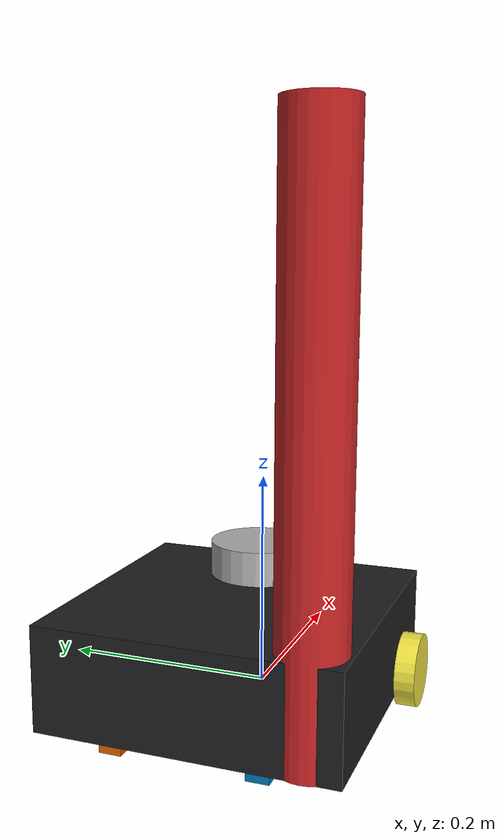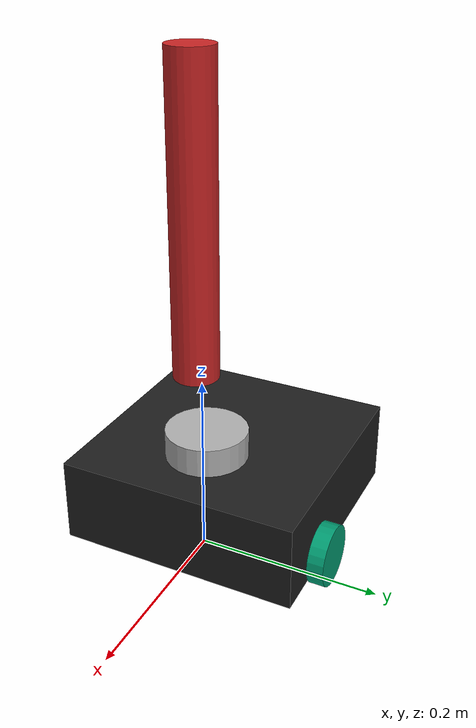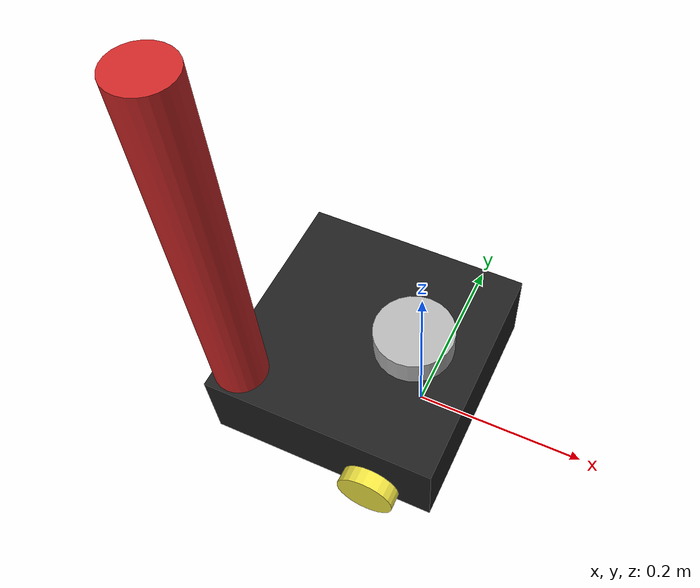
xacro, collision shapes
<?xml version="1.0" ?>
<robot name="turtlebot3_waffle_pi_for_open_manipulator" xmlns:xacro="http://ros.org/wiki/xacro">
  <xacro:include filename="$(find turtlebot3_description)/urdf/common_properties.xacro"/>
  <xacro:include filename="$(find point_cloud_edge_and_corner_detection)/urdf/waffle_pi_with_arm.gazebo.xacro"/>

  <link name="base_footprint"/>

  <joint name="base_joint" type="fixed">
    <parent link="base_footprint"/>
    <child link="base_link" />
    <origin xyz="0 0 0.010" rpy="0 0 0"/>
  </joint>

  <link name="base_link">
    <visual>
      <origin xyz="-0.064 0 0.0" rpy="0 0 0"/>
      <geometry>
        <mesh filename="package://turtlebot3_description/meshes/bases/waffle_pi_base_for_open_manipulator.stl" scale="0.001 0.001 0.001"/>
      </geometry>
      <material name="light_black"/>
    </visual>

    <collision>
      <origin xyz="-0.064 0 0.047" rpy="0 0 0"/>
      <geometry>
        <box size="0.266 0.266 0.094"/>
      </geometry>
    </collision>

    <inertial>
      <origin xyz="0.0 0 0.0" rpy="0 0 0"/>
      <mass value="1.6329594e+00"/>
      <inertia ixx="1.0" ixy="0.0" ixz="0.0"
               iyy="1.0" iyz="0.0"
               izz="1.0" />
    </inertial>
  </link>

  <joint name="wheel_left_joint" type="continuous">
    <parent link="base_link"/>
    <child link="wheel_left_link"/>
    <origin xyz="0.0 0.144 0.023" rpy="-1.57 0 0"/>
    <axis xyz="0 0 1"/>
  </joint>

  <link name="wheel_left_link">
    <visual>
      <origin xyz="0 0 0" rpy="1.57 0 0"/>
      <geometry>
        <mesh filename="package://turtlebot3_description/meshes/wheels/left_tire.stl" scale="0.001 0.001 0.001"/>
      </geometry>
      <material name="dark"/>
    </visual>

    <collision>
      <origin xyz="0 0 0" rpy="0 0 0"/>
      <geometry>
        <cylinder length="0.018" radius="0.033"/>
      </geometry>
    </collision>

    <inertial>
      <origin xyz="0 0 0" />
      <mass value="2.8498940e-02" />
      <inertia ixx="1.1175580e-05" ixy="-4.2369783e-11" ixz="-5.9381719e-09"
               iyy="1.1192413e-05" iyz="-1.4400107e-11"
               izz="2.0712558e-05" />
      </inertial>
  </link>

  <joint name="wheel_right_joint" type="continuous">
    <parent link="base_link"/>
    <child link="wheel_right_link"/>
    <origin xyz="0.0 -0.144 0.023" rpy="-1.57 0 0"/>
    <axis xyz="0 0 1"/>
  </joint>

  <link name="wheel_right_link">
    <visual>
      <origin xyz="0 0 0" rpy="1.57 0 0"/>
      <geometry>
        <mesh filename="package://turtlebot3_description/meshes/wheels/right_tire.stl" scale="0.001 0.001 0.001"/>
      </geometry>
      <material name="dark"/>
    </visual>

    <collision>
      <origin xyz="0 0.001 0" rpy="0 0 0"/>
      <geometry>
        <cylinder length="0.018" radius="0.033"/>
      </geometry>
    </collision>

    <inertial>
      <origin xyz="0 0 0" />
      <mass value="2.8498940e-02" />
      <inertia ixx="1.1175580e-05" ixy="-4.2369783e-11" ixz="-5.9381719e-09"
               iyy="1.1192413e-05" iyz="-1.4400107e-11"
               izz="2.0712558e-05" />
      </inertial>
  </link>

  <joint name="caster_back_right_joint" type="fixed">
    <parent link="base_link"/>
    <child link="caster_back_right_link"/>
    <origin xyz="-0.177 -0.064 -0.004" rpy="-1.57 0 0"/>
  </joint>

  <link name="caster_back_right_link">
    <collision>
      <origin xyz="0 0.001 0" rpy="0 0 0"/>
      <geometry>
        <box size="0.030 0.009 0.020"/>
      </geometry>
    </collision>

    <inertial>
      <origin xyz="0 0 0" />
      <mass value="0.005" />
      <inertia ixx="0.001" ixy="0.0" ixz="0.0"
               iyy="0.001" iyz="0.0"
               izz="0.001" />
    </inertial>
  </link>

  <joint name="caster_back_left_joint" type="fixed">
    <parent link="base_link"/>
    <child link="caster_back_left_link"/>
    <origin xyz="-0.177 0.064 -0.004" rpy="-1.57 0 0"/>
  </joint>

  <link name="caster_back_left_link">
    <collision>
      <origin xyz="0 0.001 0" rpy="0 0 0"/>
      <geometry>
        <box size="0.030 0.009 0.020"/>
      </geometry>
    </collision>

    <inertial>
      <origin xyz="0 0 0" />
      <mass value="0.005" />
      <inertia ixx="0.001" ixy="0.0" ixz="0.0"
               iyy="0.001" iyz="0.0"
               izz="0.001" />
    </inertial>
  </link>

  <joint name="imu_joint" type="fixed">
    <parent link="base_link"/>
    <child link="imu_link"/>
    <origin xyz="0.0 0 0.068" rpy="0 0 0"/>
  </joint>

  <link name="imu_link"/>

  <joint name="scan_joint" type="fixed">
    <parent link="base_link"/>
    <child link="base_scan"/>
    <origin xyz="-0.024 0 0.122" rpy="0 0 0"/>
  </joint>

  <link name="base_scan">
    <visual>
      <origin xyz="0 0 0.0" rpy="0 0 0"/>
      <geometry>
        <mesh filename="package://turtlebot3_description/meshes/sensors/lds.stl" scale="0.001 0.001 0.001"/>
      </geometry>
      <material name="dark"/>
    </visual>

    <collision>
      <origin xyz="0.015 0 -0.0065" rpy="0 0 0"/>
      <geometry>
        <cylinder length="0.0315" radius="0.045"/>
      </geometry>
    </collision>

    <inertial>
      <mass value="0.114" />
      <origin xyz="0 0 0" />
      <inertia ixx="0.001" ixy="0.0" ixz="0.0"
               iyy="0.001" iyz="0.0"
               izz="0.001" />
    </inertial>
  </link>

  <joint name="camera_joint" type="fixed">
    <origin xyz="-0.17 -0.03 0.46" rpy="0 0.872665 1.57"/>
    <parent link="base_link"/>
    <child link="camera_link"/>
  </joint>

  <link name="camera_link">
    <visual>
      <origin xyz="0 0 0" rpy="0 0 0"/>
      <geometry>
        <box size="0.015 0.030 0.027"/>
      </geometry>
      <material name="red"/>
    </visual>
  </link>

  <joint name="camera_depth_frame" type="fixed">
    <parent link="camera_link"/>
    <child link="camera_depth_optical_frame"/>
    <origin xyz="0.0 0 0" rpy="-1.57 0 -1.57"/>
  </joint>

  <link name="camera_depth_optical_frame"/>

  <joint name="camera_rod_joint" type="fixed">
    <origin xyz="-0.17 -0.1 0.25" rpy="0 0 0"/>
    <parent link="base_link"/>
    <child link="camera_rod"/>
  </joint>

  <link name="camera_rod">
    <visual>
      <origin xyz="0 0 0" rpy="0 0 0"/>
      <geometry>
        <cylinder length="0.5" radius="0.018"/>
      </geometry>
      <material name="red"/>
    </visual>
    <collision>
      <origin xyz="0 0 0" rpy="0 0 0"/>
      <geometry>
        <cylinder length="0.5" radius="0.03"/>
      </geometry>
    </collision>
  </link>

</robot>
